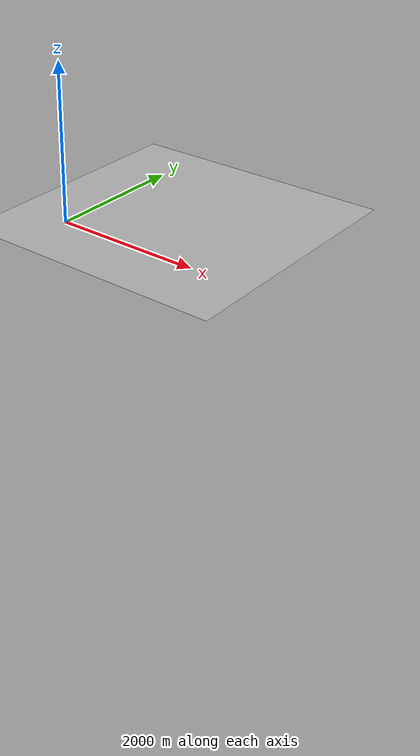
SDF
<sdf version='1.9'>
  <world name='light_buoy_world'>

    <!-- Physics -->
    <physics type="ode">
      <max_step_size>0.004</max_step_size>
      <real_time_factor>1.0</real_time_factor>
      <real_time_update_rate>250</real_time_update_rate>
    </physics>

    <!-- Core plugins -->
    <plugin name='gz::sim::systems::Physics'        filename='gz-sim-physics-system'/>
    <plugin name='gz::sim::systems::UserCommands'   filename='gz-sim-user-commands-system'/>
    <plugin name='gz::sim::systems::SceneBroadcaster' filename='gz-sim-scene-broadcaster-system'/>
    <plugin name='gz::sim::systems::Contact'        filename='gz-sim-contact-system'/>
    <plugin name='gz::sim::systems::Imu'            filename='gz-sim-imu-system'/>
    <plugin name='gz::sim::systems::AirPressure'    filename='gz-sim-air-pressure-system'/>
    <plugin name='gz::sim::systems::Sensors'        filename='gz-sim-sensors-system'>
      <render_engine>ogre2</render_engine>
    </plugin>

    <!-- GUI -->
    <gui fullscreen='false'>
      <plugin name='3D View' filename='GzScene3D'>
        <gz-gui>
          <title>3D View</title>
          <property type='bool'   key='showTitleBar'>0</property>
          <property type='string' key='state'>docked</property>
        </gz-gui>
        <engine>ogre2</engine>
        <scene>scene</scene>
        <ambient_light>0.5984631152222222 0.5984631152222222 0.5984631152222222</ambient_light>
        <background_color>0.8984631152222222 0.8984631152222222 0.8984631152222222</background_color>
        <camera_pose>-8 0 4 0 0.4 0</camera_pose>
      </plugin>
      <plugin name='World control' filename='WorldControl'>
        <gz-gui>
          <title>World control</title>
          <property type='bool'   key='showTitleBar'>0</property>
          <property type='bool'   key='resizable'>0</property>
          <property type='double' key='height'>72</property>
          <property type='double' key='width'>121</property>
          <property type='double' key='z'>1</property>
          <property type='string' key='state'>floating</property>
          <anchors target='3D View'>
            <line own='left'   target='left'/>
            <line own='bottom' target='bottom'/>
          </anchors>
        </gz-gui>
        <play_pause>1</play_pause>
        <step>1</step>
        <start_paused>1</start_paused>
      </plugin>
      <plugin name='World stats' filename='WorldStats'>
        <gz-gui>
          <title>World stats</title>
          <property type='bool'   key='showTitleBar'>0</property>
          <property type='bool'   key='resizable'>0</property>
          <property type='double' key='height'>110</property>
          <property type='double' key='width'>290</property>
          <property type='double' key='z'>1</property>
          <property type='string' key='state'>floating</property>
          <anchors target='3D View'>
            <line own='right'  target='right'/>
            <line own='bottom' target='bottom'/>
          </anchors>
        </gz-gui>
        <sim_time>1</sim_time>
        <real_time>1</real_time>
        <real_time_factor>1</real_time_factor>
        <iterations>1</iterations>
      </plugin>
      <plugin name='Entity tree' filename='EntityTree'/>
    </gui>

    <!-- Scene -->
    <gravity>0 0 -9.8</gravity>
    <magnetic_field>6e-06 2.3e-05 -4.2e-05</magnetic_field>
    <atmosphere type='adiabatic'/>
    <scene>
      <grid>false</grid>
      <ambient>0.4 0.4 0.4 1</ambient>
      <background>0.7 0.7 0.7 1</background>
      <shadows>true</shadows>
    </scene>

    <!-- Ground Plane -->
    <model name='ground_plane'>
      <static>true</static>
      <link name='link'>
        <collision name='collision'>
          <geometry>
            <plane>
              <normal>0 0 1</normal>
              <size>1 1</size>
            </plane>
          </geometry>
          <surface>
            <friction><ode/></friction>
            <bounce/>
            <contact/>
          </surface>
        </collision>
        <visual name='visual'>
          <geometry>
            <plane>
              <normal>0 0 1</normal>
              <size>100 100</size>
            </plane>
          </geometry>
          <material>
            <ambient>0.8 0.8 0.8 1</ambient>
            <diffuse>0.8 0.8 0.8 1</diffuse>
            <specular>0.8 0.8 0.8 1</specular>
          </material>
        </visual>
      </link>
    </model>

    <!-- Sun -->
    <light name='sun' type='directional'>
      <pose>0 0 500 0 -0 0</pose>
      <cast_shadows>true</cast_shadows>
      <intensity>1</intensity>
      <direction>0.001 0.625 -0.78</direction>
      <diffuse>0.904 0.904 0.904 1</diffuse>
      <specular>0.271 0.271 0.271 1</specular>
    </light>

    <!--
      Boya 1 — FLASHING BLUE
      Parpadea a 1 Hz. Referencia: boya de estribor (canal derecho).
    -->
    <include>
      <uri>model://robotx_light_buoy</uri>
      <name>buoy_flashing_blue</name>
      <pose>5 -2 0 0 0 0</pose>
      <plugin
        filename="gz-sim-robotx-light-buoy-system"
        name="robotx::RobotXLightBuoySystem">
        <color>blue</color>
        <mode>flashing</mode>
        <blink_period>1.0</blink_period>
      </plugin>
    </include>

    <!--
      Boya 2 — SOLID BLUE
      Encendida constantemente en azul. Referencia: boya de babor.
    -->
    <include>
      <uri>model://robotx_light_buoy</uri>
      <name>buoy_solid_blue</name>
      <pose>5 2 0 0 0 0</pose>
      <plugin
        filename="gz-sim-robotx-light-buoy-system"
        name="robotx::RobotXLightBuoySystem">
        <color>blue</color>
        <mode>solid</mode>
        <blink_period>1.0</blink_period>
      </plugin>
    </include>

  </world>
</sdf>

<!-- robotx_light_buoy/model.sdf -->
<sdf version="1.9">
  <model name="robotx_light_buoy">
    <static>true</static>

    <link name="base_link">

      <!-- Cuerpo principal: cilindro blanco -->
      <visual name="buoy_body_visual">
        <pose>0 0 0.35 0 0 0</pose>
        <geometry>
          <cylinder>
            <radius>0.2</radius>
            <length>0.7</length>
          </cylinder>
        </geometry>
        <material>
          <ambient>1 1 1 1</ambient>
          <diffuse>1 1 1 1</diffuse>
        </material>
      </visual>

      <collision name="buoy_body_collision">
        <pose>0 0 0.35 0 0 0</pose>
        <geometry>
          <cylinder>
            <radius>0.2</radius>
            <length>0.7</length>
          </cylinder>
        </geometry>
      </collision>

      <!-- Base negra achatada del beacon -->
      <visual name="beacon_base_visual">
        <pose>0 0 0.72 0 0 0</pose>
        <geometry>
          <cylinder>
            <radius>0.09</radius>
            <length>0.04</length>
          </cylinder>
        </geometry>
        <material>
          <ambient>0 0 0 1</ambient>
          <diffuse>0 0 0 1</diffuse>
        </material>
      </visual>

      <!--
        Domo del beacon — estado ON (visible por defecto)
        El plugin la mueve a z=-10000 cuando está OFF.
      -->
      <visual name="beacon_dome_on_visual">
        <pose>0 0 0.80 0 0 0</pose>
        <geometry>
          <sphere>
            <radius>0.07</radius>
          </sphere>
        </geometry>
        <material>
          <ambient>0 0 1 1</ambient>
          <diffuse>0 0 1 1</diffuse>
          <emissive>0 0 1 1</emissive>
          <specular>0.05 0.05 0.1 1</specular>
        </material>
      </visual>

      <!--
        Domo del beacon — estado OFF (apagado, oscuro)
        El plugin lo mueve a la posición real cuando la luz está OFF.
        Empieza a z=-10000 (oculto).
      -->
      <visual name="beacon_dome_off_visual">
        <pose>0 0 -10000 0 0 0</pose>
        <geometry>
          <sphere>
            <radius>0.07</radius>
          </sphere>
        </geometry>
        <material>
          <ambient>0.05 0.05 0.05 1</ambient>
          <diffuse>0.05 0.05 0.05 1</diffuse>
          <emissive>0 0 0 1</emissive>
          <specular>0.01 0.01 0.01 1</specular>
        </material>
      </visual>

      <light name="beacon_light" type="point">
        <pose>0 0 0.85 0 0 0</pose>
        <diffuse>0 0 1 1</diffuse>
        <specular>0 0 0.5 1</specular>
        <intensity>1.5</intensity>
        <attenuation>
          <range>10</range>
          <constant>0.5</constant>
          <linear>0.05</linear>
          <quadratic>0.01</quadratic>
        </attenuation>
        <cast_shadows>false</cast_shadows>
        <visualize>false</visualize>
      </light>

    </link>

  </model>
</sdf>
